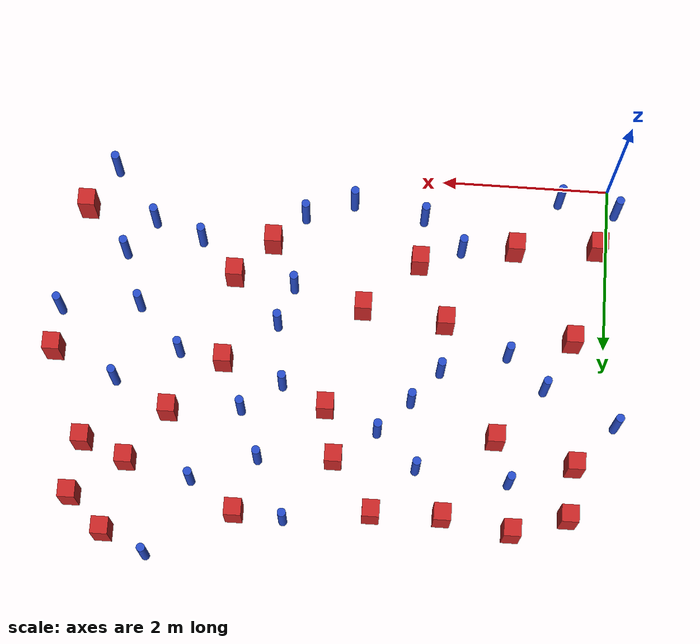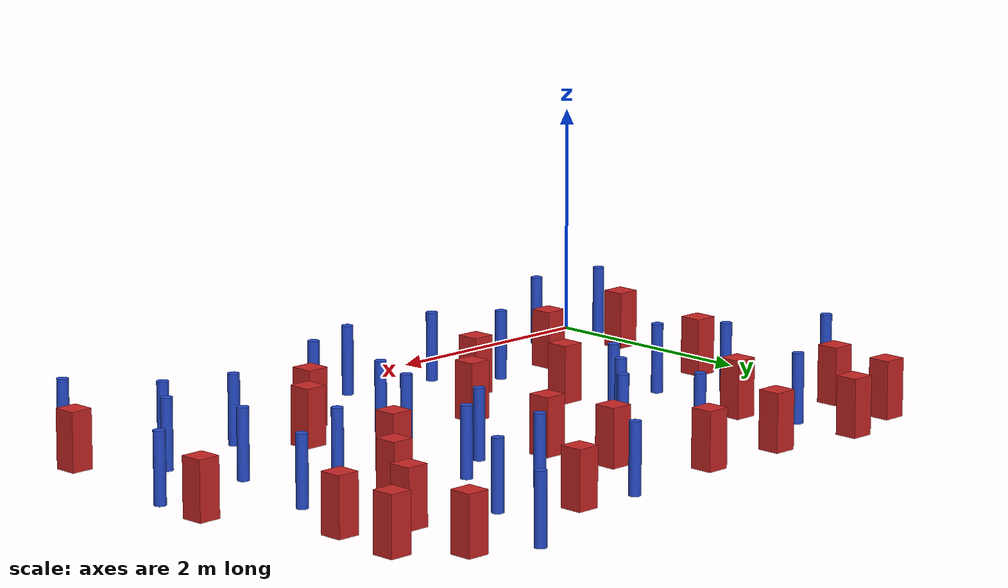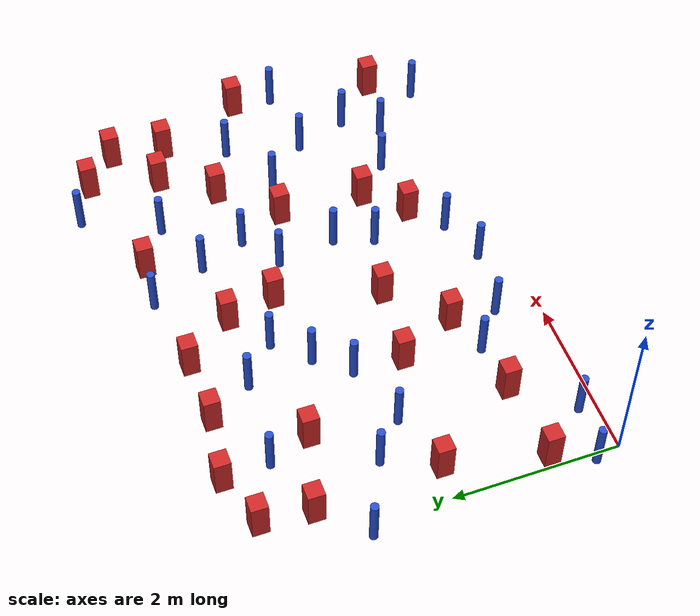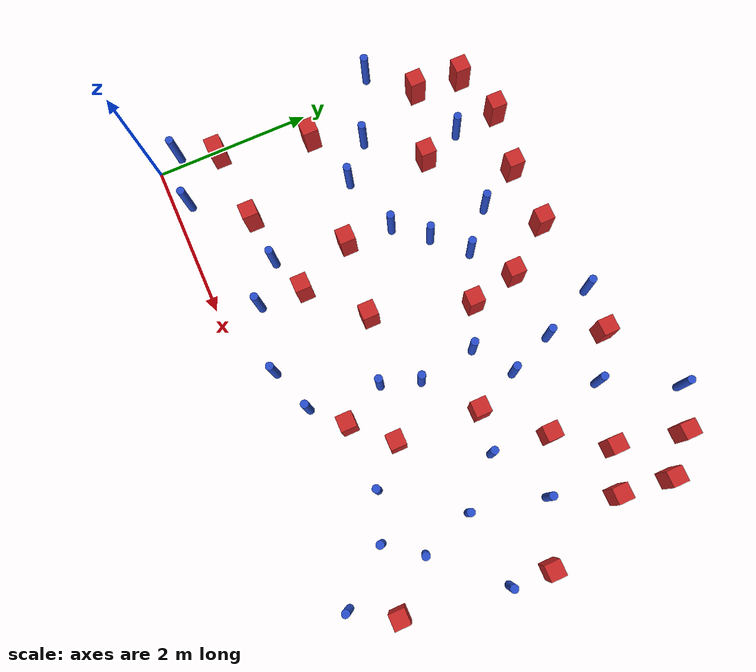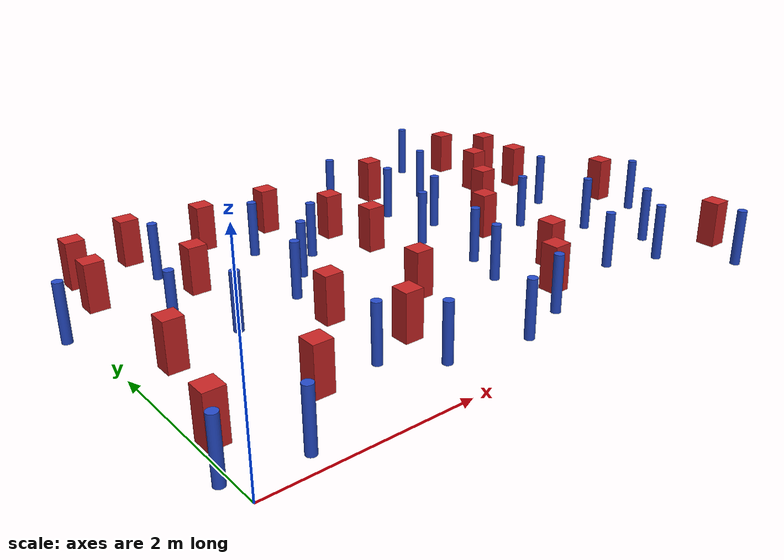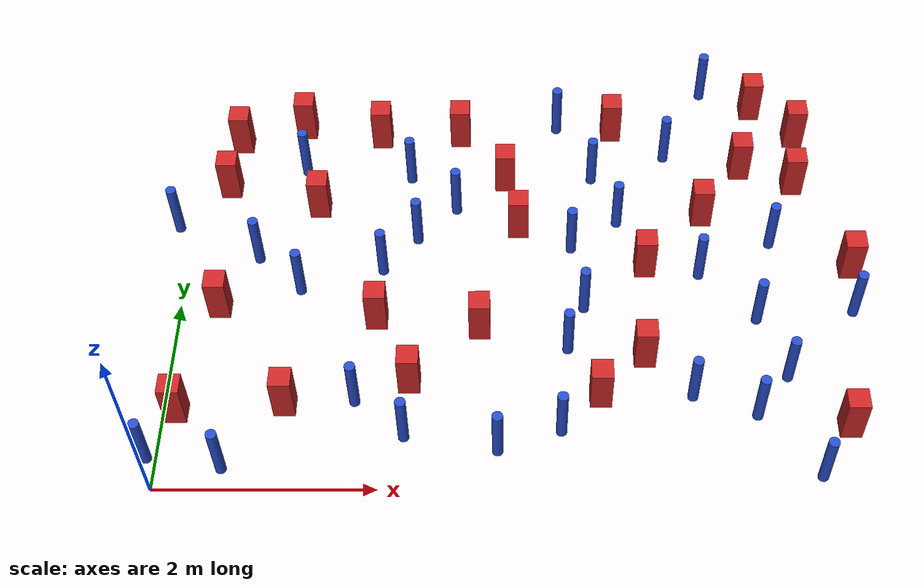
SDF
<sdf version="1.6">
 <model name="dense_15">
  <model name="square_post_obstacle7">
   <static>true</static>
   <pose>6.11921410497 4.16256446191 1.91545236811e-07 -7.35059704564e-06 1.12565212e-07 2.39332434364e-05</pose>
   <link name="link">
    <pose>0 0 0.25 0 -0 0</pose>
    <inertial>
     <mass>100</mass>
     <inertia>
      <ixx>0.166667</ixx>
      <ixy>0</ixy>
      <ixz>0</ixz>
      <iyy>0.166667</iyy>
      <iyz>0</iyz>
      <izz>0.166667</izz>
     </inertia>
    </inertial>
    <collision name="collision"><geometry><box><size>.2 .2 .5</size></box></geometry></collision>
    <visual name="visual">
     <geometry><box><size>.2 .2 .5</size></box></geometry>
     <material>
      <script><name>Gazebo/Red</name><uri>file://media/materials/scripts/gazebo.material</uri></script>
     </material>
    </visual>
   </link>
  </model>
  <model name="pole_obstacle13">
   <static>true</static>
   <pose>4.75254022368 3.89881679813 7.38925637345e-09 -8.47170692798e-08 1.24976764937e-08 -1.74513093023e-07</pose>
   <link name="link">
    <pose>0 0 0.3 0 -0 0</pose>
    <inertial>
     <mass>1</mass>
     <inertia><ixx>0.145833</ixx><ixy>0</ixy><ixz>0</ixz><iyy>0.145833</iyy><iyz>0</iyz><izz>0.125</izz></inertia>
    </inertial>
    <collision name="collision">
     <geometry><cylinder><radius>0.05</radius><length>.6</length></cylinder></geometry>
    </collision>
    <visual name="visual">
     <geometry><cylinder><radius>0.05</radius><length>.6</length></cylinder></geometry>
     <material>
      <script><name>Gazebo/Blue</name><uri>file://media/materials/scripts/gazebo.material</uri></script>
     </material>
    </visual>
   </link>
  </model>
  <model name="square_post_obstacle27">
   <static>true</static>
   <pose>3.9976284103 0.950378836151 1.91545236811e-07 -7.35059704564e-06 1.12565212e-07 2.39332434364e-05</pose>
   <link name="link">
    <pose>0 0 0.25 0 -0 0</pose>
    <inertial>
     <mass>100</mass>
     <inertia>
      <ixx>0.166667</ixx>
      <ixy>0</ixy>
      <ixz>0</ixz>
      <iyy>0.166667</iyy>
      <iyz>0</iyz>
      <izz>0.166667</izz>
     </inertia>
    </inertial>
    <collision name="collision"><geometry><box><size>.2 .2 .5</size></box></geometry></collision>
    <visual name="visual">
     <geometry><box><size>.2 .2 .5</size></box></geometry>
     <material>
      <script><name>Gazebo/Red</name><uri>file://media/materials/scripts/gazebo.material</uri></script>
     </material>
    </visual>
   </link>
  </model>
  <model name="pole_obstacle31">
   <static>true</static>
   <pose>0.698972050251 2.57138587034 7.38925637345e-09 -8.47170692799e-08 1.2497676509e-08 -1.74513093016e-07</pose>
   <link name="link">
    <pose>0 0 0.3 0 -0 0</pose>
    <inertial>
     <mass>1</mass>
     <inertia><ixx>0.145833</ixx><ixy>0</ixy><ixz>0</ixz><iyy>0.145833</iyy><iyz>0</iyz><izz>0.125</izz></inertia>
    </inertial>
    <collision name="collision">
     <geometry><cylinder><radius>0.05</radius><length>.6</length></cylinder></geometry>
    </collision>
    <visual name="visual">
     <geometry><cylinder><radius>0.05</radius><length>.6</length></cylinder></geometry>
     <material>
      <script><name>Gazebo/Blue</name><uri>file://media/materials/scripts/gazebo.material</uri></script>
     </material>
    </visual>
   </link>
  </model>
  <model name="square_post_obstacle35">
   <static>true</static>
   <pose>1.89690926793 1.83012325056 1.91545236811e-07 -7.35059704564e-06 1.12565212e-07 2.39332434364e-05</pose>
   <link name="link">
    <pose>0 0 0.25 0 -0 0</pose>
    <inertial>
     <mass>100</mass>
     <inertia>
      <ixx>0.166667</ixx>
      <ixy>0</ixy>
      <ixz>0</ixz>
      <iyy>0.166667</iyy>
      <iyz>0</iyz>
      <izz>0.166667</izz>
     </inertia>
    </inertial>
    <collision name="collision"><geometry><box><size>.2 .2 .5</size></box></geometry></collision>
    <visual name="visual">
     <geometry><box><size>.2 .2 .5</size></box></geometry>
     <material>
      <script><name>Gazebo/Red</name><uri>file://media/materials/scripts/gazebo.material</uri></script>
     </material>
    </visual>
   </link>
  </model>
  <model name="pole_obstacle35">
   <static>true</static>
   <pose>1.13954586894 2.18539703814 7.38925637345e-09 -8.47170692799e-08 1.24976765053e-08 -1.74513093017e-07</pose>
   <link name="link">
    <pose>0 0 0.3 0 -0 0</pose>
    <inertial>
     <mass>1</mass>
     <inertia><ixx>0.145833</ixx><ixy>0</ixy><ixz>0</ixz><iyy>0.145833</iyy><iyz>0</iyz><izz>0.125</izz></inertia>
    </inertial>
    <collision name="collision">
     <geometry><cylinder><radius>0.05</radius><length>.6</length></cylinder></geometry>
    </collision>
    <visual name="visual">
     <geometry><cylinder><radius>0.05</radius><length>.6</length></cylinder></geometry>
     <material>
      <script><name>Gazebo/Blue</name><uri>file://media/materials/scripts/gazebo.material</uri></script>
     </material>
    </visual>
   </link>
  </model>
  <model name="pole_obstacle36">
   <static>true</static>
   <pose>1.92514680043 2.42542104154 7.38925637345e-09 -8.47170692799e-08 1.24976765053e-08 -1.74513093017e-07</pose>
   <link name="link">
    <pose>0 0 0.3 0 -0 0</pose>
    <inertial>
     <mass>1</mass>
     <inertia><ixx>0.145833</ixx><ixy>0</ixy><ixz>0</ixz><iyy>0.145833</iyy><iyz>0</iyz><izz>0.125</izz></inertia>
    </inertial>
    <collision name="collision">
     <geometry><cylinder><radius>0.05</radius><length>.6</length></cylinder></geometry>
    </collision>
    <visual name="visual">
     <geometry><cylinder><radius>0.05</radius><length>.6</length></cylinder></geometry>
     <material>
      <script><name>Gazebo/Blue</name><uri>file://media/materials/scripts/gazebo.material</uri></script>
     </material>
    </visual>
   </link>
  </model>
  <model name="square_post_obstacle38">
   <static>true</static>
   <pose>5.51444573957 3.71277571455 1.91545236811e-07 -7.35059704564e-06 1.12565212e-07 2.39332434364e-05</pose>
   <link name="link">
    <pose>0 0 0.25 0 -0 0</pose>
    <inertial>
     <mass>100</mass>
     <inertia>
      <ixx>0.166667</ixx>
      <ixy>0</ixy>
      <ixz>0</ixz>
      <iyy>0.166667</iyy>
      <iyz>0</iyz>
      <izz>0.166667</izz>
     </inertia>
    </inertial>
    <collision name="collision"><geometry><box><size>.2 .2 .5</size></box></geometry></collision>
    <visual name="visual">
     <geometry><box><size>.2 .2 .5</size></box></geometry>
     <material>
      <script><name>Gazebo/Red</name><uri>file://media/materials/scripts/gazebo.material</uri></script>
     </material>
    </visual>
   </link>
  </model>
  <model name="pole_obstacle39">
   <static>true</static>
   <pose>3.63261479475 0.594411479498 7.38925637345e-09 -8.471706928e-08 1.24976765177e-08 -1.74513093012e-07</pose>
   <link name="link">
    <pose>0 0 0.3 0 -0 0</pose>
    <inertial>
     <mass>1</mass>
     <inertia><ixx>0.145833</ixx><ixy>0</ixy><ixz>0</ixz><iyy>0.145833</iyy><iyz>0</iyz><izz>0.125</izz></inertia>
    </inertial>
    <collision name="collision">
     <geometry><cylinder><radius>0.05</radius><length>.6</length></cylinder></geometry>
    </collision>
    <visual name="visual">
     <geometry><cylinder><radius>0.05</radius><length>.6</length></cylinder></geometry>
     <material>
      <script><name>Gazebo/Blue</name><uri>file://media/materials/scripts/gazebo.material</uri></script>
     </material>
    </visual>
   </link>
  </model>
  <model name="pole_obstacle40">
   <static>true</static>
   <pose>-0.140297477696 2.96369750289 7.38925637345e-09 -8.47170692792e-08 1.24976764377e-08 -1.74513093042e-07</pose>
   <link name="link">
    <pose>0 0 0.3 0 -0 0</pose>
    <inertial>
     <mass>1</mass>
     <inertia><ixx>0.145833</ixx><ixy>0</ixy><ixz>0</ixz><iyy>0.145833</iyy><iyz>0</iyz><izz>0.125</izz></inertia>
    </inertial>
    <collision name="collision">
     <geometry><cylinder><radius>0.05</radius><length>.6</length></cylinder></geometry>
    </collision>
    <visual name="visual">
     <geometry><cylinder><radius>0.05</radius><length>.6</length></cylinder></geometry>
     <material>
      <script><name>Gazebo/Blue</name><uri>file://media/materials/scripts/gazebo.material</uri></script>
     </material>
    </visual>
   </link>
  </model>
  <model name="pole_obstacle44">
   <static>true</static>
   <pose>2.15742503474 3.61236505607 7.38925637345e-09 -8.47170692798e-08 1.24976764939e-08 -1.74513093025e-07</pose>
   <link name="link">
    <pose>0 0 0.3 0 -0 0</pose>
    <inertial>
     <mass>1</mass>
     <inertia><ixx>0.145833</ixx><ixy>0</ixy><ixz>0</ixz><iyy>0.145833</iyy><iyz>0</iyz><izz>0.125</izz></inertia>
    </inertial>
    <collision name="collision">
     <geometry><cylinder><radius>0.05</radius><length>.6</length></cylinder></geometry>
    </collision>
    <visual name="visual">
     <geometry><cylinder><radius>0.05</radius><length>.6</length></cylinder></geometry>
     <material>
      <script><name>Gazebo/Blue</name><uri>file://media/materials/scripts/gazebo.material</uri></script>
     </material>
    </visual>
   </link>
  </model>
  <model name="pole_obstacle45">
   <static>true</static>
   <pose>5.94297906391 0.129956108175 7.38925637345e-09 -8.47170692801e-08 1.24976765186e-08 -1.74513093012e-07</pose>
   <link name="link">
    <pose>0 0 0.3 0 -0 0</pose>
    <inertial>
     <mass>1</mass>
     <inertia><ixx>0.145833</ixx><ixy>0</ixy><ixz>0</ixz><iyy>0.145833</iyy><iyz>0</iyz><izz>0.125</izz></inertia>
    </inertial>
    <collision name="collision">
     <geometry><cylinder><radius>0.05</radius><length>.6</length></cylinder></geometry>
    </collision>
    <visual name="visual">
     <geometry><cylinder><radius>0.05</radius><length>.6</length></cylinder></geometry>
     <material>
      <script><name>Gazebo/Blue</name><uri>file://media/materials/scripts/gazebo.material</uri></script>
     </material>
    </visual>
   </link>
  </model>
  <model name="square_post_obstacle45">
   <static>true</static>
   <pose>2.87869501788 1.71139791994 1.91545236811e-07 -7.35059704564e-06 1.12565212e-07 2.39332434364e-05</pose>
   <link name="link">
    <pose>0 0 0.25 0 -0 0</pose>
    <inertial>
     <mass>100</mass>
     <inertia>
      <ixx>0.166667</ixx>
      <ixy>0</ixy>
      <ixz>0</ixz>
      <iyy>0.166667</iyy>
      <iyz>0</iyz>
      <izz>0.166667</izz>
     </inertia>
    </inertial>
    <collision name="collision"><geometry><box><size>.2 .2 .5</size></box></geometry></collision>
    <visual name="visual">
     <geometry><box><size>.2 .2 .5</size></box></geometry>
     <material>
      <script><name>Gazebo/Red</name><uri>file://media/materials/scripts/gazebo.material</uri></script>
     </material>
    </visual>
   </link>
  </model>
  <model name="square_post_obstacle46">
   <static>true</static>
   <pose>0.388870257449 1.96171872005 1.91545236811e-07 -7.35059704564e-06 1.12565212e-07 2.39332434364e-05</pose>
   <link name="link">
    <pose>0 0 0.25 0 -0 0</pose>
    <inertial>
     <mass>100</mass>
     <inertia>
      <ixx>0.166667</ixx>
      <ixy>0</ixy>
      <ixz>0</ixz>
      <iyy>0.166667</iyy>
      <iyz>0</iyz>
      <izz>0.166667</izz>
     </inertia>
    </inertial>
    <collision name="collision"><geometry><box><size>.2 .2 .5</size></box></geometry></collision>
    <visual name="visual">
     <geometry><box><size>.2 .2 .5</size></box></geometry>
     <material>
      <script><name>Gazebo/Red</name><uri>file://media/materials/scripts/gazebo.material</uri></script>
     </material>
    </visual>
   </link>
  </model>
  <model name="pole_obstacle47">
   <static>true</static>
   <pose>5.00595628964 2.36893094893 7.38925637345e-09 -8.47170692798e-08 1.24976764937e-08 -1.74513093023e-07</pose>
   <link name="link">
    <pose>0 0 0.3 0 -0 0</pose>
    <inertial>
     <mass>1</mass>
     <inertia><ixx>0.145833</ixx><ixy>0</ixy><ixz>0</ixz><iyy>0.145833</iyy><iyz>0</iyz><izz>0.125</izz></inertia>
    </inertial>
    <collision name="collision">
     <geometry><cylinder><radius>0.05</radius><length>.6</length></cylinder></geometry>
    </collision>
    <visual name="visual">
     <geometry><cylinder><radius>0.05</radius><length>.6</length></cylinder></geometry>
     <material>
      <script><name>Gazebo/Blue</name><uri>file://media/materials/scripts/gazebo.material</uri></script>
     </material>
    </visual>
   </link>
  </model>
  <model name="square_post_obstacle52">
   <static>true</static>
   <pose>5.70429985319 4.55749865179 1.91545236811e-07 -7.35059704564e-06 1.12565212e-07 2.39332434364e-05</pose>
   <link name="link">
    <pose>0 0 0.25 0 -0 0</pose>
    <inertial>
     <mass>100</mass>
     <inertia>
      <ixx>0.166667</ixx>
      <ixy>0</ixy>
      <ixz>0</ixz>
      <iyy>0.166667</iyy>
      <iyz>0</iyz>
      <izz>0.166667</izz>
     </inertia>
    </inertial>
    <collision name="collision"><geometry><box><size>.2 .2 .5</size></box></geometry></collision>
    <visual name="visual">
     <geometry><box><size>.2 .2 .5</size></box></geometry>
     <material>
      <script><name>Gazebo/Red</name><uri>file://media/materials/scripts/gazebo.material</uri></script>
     </material>
    </visual>
   </link>
  </model>
  <model name="pole_obstacle53">
   <static>true</static>
   <pose>3.65114091582 4.30178377031 7.38925637345e-09 -8.47170692798e-08 1.24976765033e-08 -1.74513093019e-07</pose>
   <link name="link">
    <pose>0 0 0.3 0 -0 0</pose>
    <inertial>
     <mass>1</mass>
     <inertia><ixx>0.145833</ixx><ixy>0</ixy><ixz>0</ixz><iyy>0.145833</iyy><iyz>0</iyz><izz>0.125</izz></inertia>
    </inertial>
    <collision name="collision">
     <geometry><cylinder><radius>0.05</radius><length>.6</length></cylinder></geometry>
    </collision>
    <visual name="visual">
     <geometry><cylinder><radius>0.05</radius><length>.6</length></cylinder></geometry>
     <material>
      <script><name>Gazebo/Blue</name><uri>file://media/materials/scripts/gazebo.material</uri></script>
     </material>
    </visual>
   </link>
  </model>
  <model name="pole_obstacle54">
   <static>true</static>
   <pose>5.52081804444 1.83336792338 7.38925637345e-09 -8.471706928e-08 1.24976765134e-08 -1.74513093015e-07</pose>
   <link name="link">
    <pose>0 0 0.3 0 -0 0</pose>
    <inertial>
     <mass>1</mass>
     <inertia><ixx>0.145833</ixx><ixy>0</ixy><ixz>0</ixz><iyy>0.145833</iyy><iyz>0</iyz><izz>0.125</izz></inertia>
    </inertial>
    <collision name="collision">
     <geometry><cylinder><radius>0.05</radius><length>.6</length></cylinder></geometry>
    </collision>
    <visual name="visual">
     <geometry><cylinder><radius>0.05</radius><length>.6</length></cylinder></geometry>
     <material>
      <script><name>Gazebo/Blue</name><uri>file://media/materials/scripts/gazebo.material</uri></script>
     </material>
    </visual>
   </link>
  </model>
  <model name="square_post_obstacle60">
   <static>true</static>
   <pose>1.03155334816 4.28420791257 1.91545236811e-07 -7.35059704564e-06 1.12565212e-07 2.39332434364e-05</pose>
   <link name="link">
    <pose>0 0 0.25 0 -0 0</pose>
    <inertial>
     <mass>100</mass>
     <inertia>
      <ixx>0.166667</ixx>
      <ixy>0</ixy>
      <ixz>0</ixz>
      <iyy>0.166667</iyy>
      <iyz>0</iyz>
      <izz>0.166667</izz>
     </inertia>
    </inertial>
    <collision name="collision"><geometry><box><size>.2 .2 .5</size></box></geometry></collision>
    <visual name="visual">
     <geometry><box><size>.2 .2 .5</size></box></geometry>
     <material>
      <script><name>Gazebo/Red</name><uri>file://media/materials/scripts/gazebo.material</uri></script>
     </material>
    </visual>
   </link>
  </model>
  <model name="pole_obstacle56">
   <static>true</static>
   <pose>5.20020420543 4.79944856402 7.38925637345e-09 -8.47170692796e-08 1.24976764786e-08 -1.74513093032e-07</pose>
   <link name="link">
    <pose>0 0 0.3 0 -0 0</pose>
    <inertial>
     <mass>1</mass>
     <inertia><ixx>0.145833</ixx><ixy>0</ixy><ixz>0</ixz><iyy>0.145833</iyy><iyz>0</iyz><izz>0.125</izz></inertia>
    </inertial>
    <collision name="collision">
     <geometry><cylinder><radius>0.05</radius><length>.6</length></cylinder></geometry>
    </collision>
    <visual name="visual">
     <geometry><cylinder><radius>0.05</radius><length>.6</length></cylinder></geometry>
     <material>
      <script><name>Gazebo/Blue</name><uri>file://media/materials/scripts/gazebo.material</uri></script>
     </material>
    </visual>
   </link>
  </model>
  <model name="square_post_obstacle64">
   <static>true</static>
   <pose>0.127569910864 0.793708324014 1.91545236811e-07 -7.35059704564e-06 1.12565212e-07 2.39332434364e-05</pose>
   <link name="link">
    <pose>0 0 0.25 0 -0 0</pose>
    <inertial>
     <mass>100</mass>
     <inertia>
      <ixx>0.166667</ixx>
      <ixy>0</ixy>
      <ixz>0</ixz>
      <iyy>0.166667</iyy>
      <iyz>0</iyz>
      <izz>0.166667</izz>
     </inertia>
    </inertial>
    <collision name="collision"><geometry><box><size>.2 .2 .5</size></box></geometry></collision>
    <visual name="visual">
     <geometry><box><size>.2 .2 .5</size></box></geometry>
     <material>
      <script><name>Gazebo/Red</name><uri>file://media/materials/scripts/gazebo.material</uri></script>
     </material>
    </visual>
   </link>
  </model>
  <model name="square_post_obstacle74">
   <static>true</static>
   <pose>1.10912062064 0.864313531359 1.91545236811e-07 -7.35059704564e-06 1.12565212e-07 2.39332434364e-05</pose>
   <link name="link">
    <pose>0 0 0.25 0 -0 0</pose>
    <inertial>
     <mass>100</mass>
     <inertia>
      <ixx>0.166667</ixx>
      <ixy>0</ixy>
      <ixz>0</ixz>
      <iyy>0.166667</iyy>
      <iyz>0</iyz>
      <izz>0.166667</izz>
     </inertia>
    </inertial>
    <collision name="collision"><geometry><box><size>.2 .2 .5</size></box></geometry></collision>
    <visual name="visual">
     <geometry><box><size>.2 .2 .5</size></box></geometry>
     <material>
      <script><name>Gazebo/Red</name><uri>file://media/materials/scripts/gazebo.material</uri></script>
     </material>
    </visual>
   </link>
  </model>
  <model name="pole_obstacle82">
   <static>true</static>
   <pose>0.59641954777 0.210527559315 7.38925637345e-09 -8.471706928e-08 1.24976765073e-08 -1.74513093016e-07</pose>
   <link name="link">
    <pose>0 0 0.3 0 -0 0</pose>
    <inertial>
     <mass>1</mass>
     <inertia><ixx>0.145833</ixx><ixy>0</ixy><ixz>0</ixz><iyy>0.145833</iyy><iyz>0</iyz><izz>0.125</izz></inertia>
    </inertial>
    <collision name="collision">
     <geometry><cylinder><radius>0.05</radius><length>.6</length></cylinder></geometry>
    </collision>
    <visual name="visual">
     <geometry><cylinder><radius>0.05</radius><length>.6</length></cylinder></geometry>
     <material>
      <script><name>Gazebo/Blue</name><uri>file://media/materials/scripts/gazebo.material</uri></script>
     </material>
    </visual>
   </link>
  </model>
  <model name="square_post_obstacle80">
   <static>true</static>
   <pose>5.07583082805 3.09073552369 1.91545236811e-07 -7.35059704564e-06 1.12565212e-07 2.39332434364e-05</pose>
   <link name="link">
    <pose>0 0 0.25 0 -0 0</pose>
    <inertial>
     <mass>100</mass>
     <inertia>
      <ixx>0.166667</ixx>
      <ixy>0</ixy>
      <ixz>0</ixz>
      <iyy>0.166667</iyy>
      <iyz>0</iyz>
      <izz>0.166667</izz>
     </inertia>
    </inertial>
    <collision name="collision"><geometry><box><size>.2 .2 .5</size></box></geometry></collision>
    <visual name="visual">
     <geometry><box><size>.2 .2 .5</size></box></geometry>
     <material>
      <script><name>Gazebo/Red</name><uri>file://media/materials/scripts/gazebo.material</uri></script>
     </material>
    </visual>
   </link>
  </model>
  <model name="pole_obstacle90">
   <static>true</static>
   <pose>-0.0850136364126 0.316464807151 7.38925637345e-09 -8.47170692799e-08 1.24976765053e-08 -1.74513093017e-07</pose>
   <link name="link">
    <pose>0 0 0.3 0 -0 0</pose>
    <inertial>
     <mass>1</mass>
     <inertia><ixx>0.145833</ixx><ixy>0</ixy><ixz>0</ixz><iyy>0.145833</iyy><iyz>0</iyz><izz>0.125</izz></inertia>
    </inertial>
    <collision name="collision">
     <geometry><cylinder><radius>0.05</radius><length>.6</length></cylinder></geometry>
    </collision>
    <visual name="visual">
     <geometry><cylinder><radius>0.05</radius><length>.6</length></cylinder></geometry>
     <material>
      <script><name>Gazebo/Blue</name><uri>file://media/materials/scripts/gazebo.material</uri></script>
     </material>
    </visual>
   </link>
  </model>
  <model name="pole_obstacle96">
   <static>true</static>
   <pose>5.42826381468 0.76316016338 7.38925637345e-09 -8.47170692799e-08 1.24976765038e-08 -1.74513093018e-07</pose>
   <link name="link">
    <pose>0 0 0.3 0 -0 0</pose>
    <inertial>
     <mass>1</mass>
     <inertia><ixx>0.145833</ixx><ixy>0</ixy><ixz>0</ixz><iyy>0.145833</iyy><iyz>0</iyz><izz>0.125</izz></inertia>
    </inertial>
    <collision name="collision">
     <geometry><cylinder><radius>0.05</radius><length>.6</length></cylinder></geometry>
    </collision>
    <visual name="visual">
     <geometry><cylinder><radius>0.05</radius><length>.6</length></cylinder></geometry>
     <material>
      <script><name>Gazebo/Blue</name><uri>file://media/materials/scripts/gazebo.material</uri></script>
     </material>
    </visual>
   </link>
  </model>
  <model name="square_post_obstacle88">
   <static>true</static>
   <pose>4.21620489456 4.24878912598 1.91545236811e-07 -7.35059704564e-06 1.12565212e-07 2.39332434364e-05</pose>
   <link name="link">
    <pose>0 0 0.25 0 -0 0</pose>
    <inertial>
     <mass>100</mass>
     <inertia>
      <ixx>0.166667</ixx>
      <ixy>0</ixy>
      <ixz>0</ixz>
      <iyy>0.166667</iyy>
      <iyz>0</iyz>
      <izz>0.166667</izz>
     </inertia>
    </inertial>
    <collision name="collision"><geometry><box><size>.2 .2 .5</size></box></geometry></collision>
    <visual name="visual">
     <geometry><box><size>.2 .2 .5</size></box></geometry>
     <material>
      <script><name>Gazebo/Red</name><uri>file://media/materials/scripts/gazebo.material</uri></script>
     </material>
    </visual>
   </link>
  </model>
  <model name="square_post_obstacle91">
   <static>true</static>
   <pose>3.11571933212 3.55489792918 1.91545236811e-07 -7.35059704564e-06 1.12565212e-07 2.39332434364e-05</pose>
   <link name="link">
    <pose>0 0 0.25 0 -0 0</pose>
    <inertial>
     <mass>100</mass>
     <inertia>
      <ixx>0.166667</ixx>
      <ixy>0</ixy>
      <ixz>0</ixz>
      <iyy>0.166667</iyy>
      <iyz>0</iyz>
      <izz>0.166667</izz>
     </inertia>
    </inertial>
    <collision name="collision"><geometry><box><size>.2 .2 .5</size></box></geometry></collision>
    <visual name="visual">
     <geometry><box><size>.2 .2 .5</size></box></geometry>
     <material>
      <script><name>Gazebo/Red</name><uri>file://media/materials/scripts/gazebo.material</uri></script>
     </material>
    </visual>
   </link>
  </model>
  <model name="pole_obstacle105">
   <static>true</static>
   <pose>3.87378546488 1.96796487815 7.38925637345e-09 -8.47170692799e-08 1.24976764986e-08 -1.74513093023e-07</pose>
   <link name="link">
    <pose>0 0 0.3 0 -0 0</pose>
    <inertial>
     <mass>1</mass>
     <inertia><ixx>0.145833</ixx><ixy>0</ixy><ixz>0</ixz><iyy>0.145833</iyy><iyz>0</iyz><izz>0.125</izz></inertia>
    </inertial>
    <collision name="collision">
     <geometry><cylinder><radius>0.05</radius><length>.6</length></cylinder></geometry>
    </collision>
    <visual name="visual">
     <geometry><cylinder><radius>0.05</radius><length>.6</length></cylinder></geometry>
     <material>
      <script><name>Gazebo/Blue</name><uri>file://media/materials/scripts/gazebo.material</uri></script>
     </material>
    </visual>
   </link>
  </model>
  <model name="pole_obstacle107">
   <static>true</static>
   <pose>3.76734034066 2.6973369474 7.38925637345e-09 -8.47170692798e-08 1.24976764939e-08 -1.74513093025e-07</pose>
   <link name="link">
    <pose>0 0 0.3 0 -0 0</pose>
    <inertial>
     <mass>1</mass>
     <inertia><ixx>0.145833</ixx><ixy>0</ixy><ixz>0</ixz><iyy>0.145833</iyy><iyz>0</iyz><izz>0.125</izz></inertia>
    </inertial>
    <collision name="collision">
     <geometry><cylinder><radius>0.05</radius><length>.6</length></cylinder></geometry>
    </collision>
    <visual name="visual">
     <geometry><cylinder><radius>0.05</radius><length>.6</length></cylinder></geometry>
     <material>
      <script><name>Gazebo/Blue</name><uri>file://media/materials/scripts/gazebo.material</uri></script>
     </material>
    </visual>
   </link>
  </model>
  <model name="pole_obstacle109">
   <static>true</static>
   <pose>3.05712422276 0.391317383034 7.38925637345e-09 -8.471706928e-08 1.24976765172e-08 -1.74513093013e-07</pose>
   <link name="link">
    <pose>0 0 0.3 0 -0 0</pose>
    <inertial>
     <mass>1</mass>
     <inertia><ixx>0.145833</ixx><ixy>0</ixy><ixz>0</ixz><iyy>0.145833</iyy><iyz>0</iyz><izz>0.125</izz></inertia>
    </inertial>
    <collision name="collision">
     <geometry><cylinder><radius>0.05</radius><length>.6</length></cylinder></geometry>
    </collision>
    <visual name="visual">
     <geometry><cylinder><radius>0.05</radius><length>.6</length></cylinder></geometry>
     <material>
      <script><name>Gazebo/Blue</name><uri>file://media/materials/scripts/gazebo.material</uri></script>
     </material>
    </visual>
   </link>
  </model>
  <model name="square_post_obstacle98">
   <static>true</static>
   <pose>2.2363825276 1.10390865737 1.91545236811e-07 -7.35059704564e-06 1.12565212e-07 2.39332434364e-05</pose>
   <link name="link">
    <pose>0 0 0.25 0 -0 0</pose>
    <inertial>
     <mass>100</mass>
     <inertia>
      <ixx>0.166667</ixx>
      <ixy>0</ixy>
      <ixz>0</ixz>
      <iyy>0.166667</iyy>
      <iyz>0</iyz>
      <izz>0.166667</izz>
     </inertia>
    </inertial>
    <collision name="collision"><geometry><box><size>.2 .2 .5</size></box></geometry></collision>
    <visual name="visual">
     <geometry><box><size>.2 .2 .5</size></box></geometry>
     <material>
      <script><name>Gazebo/Red</name><uri>file://media/materials/scripts/gazebo.material</uri></script>
     </material>
    </visual>
   </link>
  </model>
  <model name="square_post_obstacle109">
   <static>true</static>
   <pose>1.25293970613 3.20373089903 1.91545236811e-07 -7.35059704564e-06 1.12565212e-07 2.39332434364e-05</pose>
   <link name="link">
    <pose>0 0 0.25 0 -0 0</pose>
    <inertial>
     <mass>100</mass>
     <inertia>
      <ixx>0.166667</ixx>
      <ixy>0</ixy>
      <ixz>0</ixz>
      <iyy>0.166667</iyy>
      <iyz>0</iyz>
      <izz>0.166667</izz>
     </inertia>
    </inertial>
    <collision name="collision"><geometry><box><size>.2 .2 .5</size></box></geometry></collision>
    <visual name="visual">
     <geometry><box><size>.2 .2 .5</size></box></geometry>
     <material>
      <script><name>Gazebo/Red</name><uri>file://media/materials/scripts/gazebo.material</uri></script>
     </material>
    </visual>
   </link>
  </model>
  <model name="pole_obstacle139">
   <static>true</static>
   <pose>2.25131700589 2.81456950409 7.38925637345e-09 -8.47170692798e-08 1.24976764939e-08 -1.74513093025e-07</pose>
   <link name="link">
    <pose>0 0 0.3 0 -0 0</pose>
    <inertial>
     <mass>1</mass>
     <inertia><ixx>0.145833</ixx><ixy>0</ixy><ixz>0</ixz><iyy>0.145833</iyy><iyz>0</iyz><izz>0.125</izz></inertia>
    </inertial>
    <collision name="collision">
     <geometry><cylinder><radius>0.05</radius><length>.6</length></cylinder></geometry>
    </collision>
    <visual name="visual">
     <geometry><cylinder><radius>0.05</radius><length>.6</length></cylinder></geometry>
     <material>
      <script><name>Gazebo/Blue</name><uri>file://media/materials/scripts/gazebo.material</uri></script>
     </material>
    </visual>
   </link>
  </model>
  <model name="square_post_obstacle126">
   <static>true</static>
   <pose>6.48133287327 2.43271555359 1.91545236811e-07 -7.35059704564e-06 1.12565212e-07 2.39332434364e-05</pose>
   <link name="link">
    <pose>0 0 0.25 0 -0 0</pose>
    <inertial>
     <mass>100</mass>
     <inertia>
      <ixx>0.166667</ixx>
      <ixy>0</ixy>
      <ixz>0</ixz>
      <iyy>0.166667</iyy>
      <iyz>0</iyz>
      <izz>0.166667</izz>
     </inertia>
    </inertial>
    <collision name="collision"><geometry><box><size>.2 .2 .5</size></box></geometry></collision>
    <visual name="visual">
     <geometry><box><size>.2 .2 .5</size></box></geometry>
     <material>
      <script><name>Gazebo/Red</name><uri>file://media/materials/scripts/gazebo.material</uri></script>
     </material>
    </visual>
   </link>
  </model>
  <model name="pole_obstacle155">
   <static>true</static>
   <pose>3.99479648377 3.60211802251 7.38925637345e-09 -8.47170692796e-08 1.24976764765e-08 -1.74513093035e-07</pose>
   <link name="link">
    <pose>0 0 0.3 0 -0 0</pose>
    <inertial>
     <mass>1</mass>
     <inertia><ixx>0.145833</ixx><ixy>0</ixy><ixz>0</ixz><iyy>0.145833</iyy><iyz>0</iyz><izz>0.125</izz></inertia>
    </inertial>
    <collision name="collision">
     <geometry><cylinder><radius>0.05</radius><length>.6</length></cylinder></geometry>
    </collision>
    <visual name="visual">
     <geometry><cylinder><radius>0.05</radius><length>.6</length></cylinder></geometry>
     <material>
      <script><name>Gazebo/Blue</name><uri>file://media/materials/scripts/gazebo.material</uri></script>
     </material>
    </visual>
   </link>
  </model>
  <model name="square_post_obstacle147">
   <static>true</static>
   <pose>0.326971583128 3.46836973683 1.91545236811e-07 -7.35059704564e-06 1.12565212e-07 2.39332434364e-05</pose>
   <link name="link">
    <pose>0 0 0.25 0 -0 0</pose>
    <inertial>
     <mass>100</mass>
     <inertia>
      <ixx>0.166667</ixx>
      <ixy>0</ixy>
      <ixz>0</ixz>
      <iyy>0.166667</iyy>
      <iyz>0</iyz>
      <izz>0.166667</izz>
     </inertia>
    </inertial>
    <collision name="collision"><geometry><box><size>.2 .2 .5</size></box></geometry></collision>
    <visual name="visual">
     <geometry><box><size>.2 .2 .5</size></box></geometry>
     <material>
      <script><name>Gazebo/Red</name><uri>file://media/materials/scripts/gazebo.material</uri></script>
     </material>
    </visual>
   </link>
  </model>
  <model name="square_post_obstacle148">
   <static>true</static>
   <pose>1.83271213947 4.15237861725 1.91545236811e-07 -7.35059704564e-06 1.12565212e-07 2.39332434364e-05</pose>
   <link name="link">
    <pose>0 0 0.25 0 -0 0</pose>
    <inertial>
     <mass>100</mass>
     <inertia>
      <ixx>0.166667</ixx>
      <ixy>0</ixy>
      <ixz>0</ixz>
      <iyy>0.166667</iyy>
      <iyz>0</iyz>
      <izz>0.166667</izz>
     </inertia>
    </inertial>
    <collision name="collision"><geometry><box><size>.2 .2 .5</size></box></geometry></collision>
    <visual name="visual">
     <geometry><box><size>.2 .2 .5</size></box></geometry>
     <material>
      <script><name>Gazebo/Red</name><uri>file://media/materials/scripts/gazebo.material</uri></script>
     </material>
    </visual>
   </link>
  </model>
  <model name="pole_obstacle157">
   <static>true</static>
   <pose>1.07508678061 3.71381754329 7.38925637345e-09 -8.47170692799e-08 1.24976765053e-08 -1.74513093017e-07</pose>
   <link name="link">
    <pose>0 0 0.3 0 -0 0</pose>
    <inertial>
     <mass>1</mass>
     <inertia><ixx>0.145833</ixx><ixy>0</ixy><ixz>0</ixz><iyy>0.145833</iyy><iyz>0</iyz><izz>0.125</izz></inertia>
    </inertial>
    <collision name="collision">
     <geometry><cylinder><radius>0.05</radius><length>.6</length></cylinder></geometry>
    </collision>
    <visual name="visual">
     <geometry><cylinder><radius>0.05</radius><length>.6</length></cylinder></geometry>
     <material>
      <script><name>Gazebo/Blue</name><uri>file://media/materials/scripts/gazebo.material</uri></script>
     </material>
    </visual>
   </link>
  </model>
  <model name="pole_obstacle158">
   <static>true</static>
   <pose>3.71012371541 1.49089795242 7.38925637345e-09 -8.471706928e-08 1.24976765152e-08 -1.74513093012e-07</pose>
   <link name="link">
    <pose>0 0 0.3 0 -0 0</pose>
    <inertial>
     <mass>1</mass>
     <inertia><ixx>0.145833</ixx><ixy>0</ixy><ixz>0</ixz><iyy>0.145833</iyy><iyz>0</iyz><izz>0.125</izz></inertia>
    </inertial>
    <collision name="collision">
     <geometry><cylinder><radius>0.05</radius><length>.6</length></cylinder></geometry>
    </collision>
    <visual name="visual">
     <geometry><cylinder><radius>0.05</radius><length>.6</length></cylinder></geometry>
     <material>
      <script><name>Gazebo/Blue</name><uri>file://media/materials/scripts/gazebo.material</uri></script>
     </material>
    </visual>
   </link>
  </model>
  <model name="pole_obstacle164">
   <static>true</static>
   <pose>5.74631214114 1.17899582524 7.38925637345e-09 -8.471706928e-08 1.24976765134e-08 -1.74513093015e-07</pose>
   <link name="link">
    <pose>0 0 0.3 0 -0 0</pose>
    <inertial>
     <mass>1</mass>
     <inertia><ixx>0.145833</ixx><ixy>0</ixy><ixz>0</ixz><iyy>0.145833</iyy><iyz>0</iyz><izz>0.125</izz></inertia>
    </inertial>
    <collision name="collision">
     <geometry><cylinder><radius>0.05</radius><length>.6</length></cylinder></geometry>
    </collision>
    <visual name="visual">
     <geometry><cylinder><radius>0.05</radius><length>.6</length></cylinder></geometry>
     <material>
      <script><name>Gazebo/Blue</name><uri>file://media/materials/scripts/gazebo.material</uri></script>
     </material>
    </visual>
   </link>
  </model>
  <model name="square_post_obstacle161">
   <static>true</static>
   <pose>2.64797752137 4.1649786972 1.91545236811e-07 -7.35059704564e-06 1.12565212e-07 2.39332434364e-05</pose>
   <link name="link">
    <pose>0 0 0.25 0 -0 0</pose>
    <inertial>
     <mass>100</mass>
     <inertia>
      <ixx>0.166667</ixx>
      <ixy>0</ixy>
      <ixz>0</ixz>
      <iyy>0.166667</iyy>
      <iyz>0</iyz>
      <izz>0.166667</izz>
     </inertia>
    </inertial>
    <collision name="collision"><geometry><box><size>.2 .2 .5</size></box></geometry></collision>
    <visual name="visual">
     <geometry><box><size>.2 .2 .5</size></box></geometry>
     <material>
      <script><name>Gazebo/Red</name><uri>file://media/materials/scripts/gazebo.material</uri></script>
     </material>
    </visual>
   </link>
  </model>
  <model name="pole_obstacle176">
   <static>true</static>
   <pose>4.84932029015 0.967150271005 7.38925637345e-09 -8.471706928e-08 1.24976765166e-08 -1.74513093011e-07</pose>
   <link name="link">
    <pose>0 0 0.3 0 -0 0</pose>
    <inertial>
     <mass>1</mass>
     <inertia><ixx>0.145833</ixx><ixy>0</ixy><ixz>0</ixz><iyy>0.145833</iyy><iyz>0</iyz><izz>0.125</izz></inertia>
    </inertial>
    <collision name="collision">
     <geometry><cylinder><radius>0.05</radius><length>.6</length></cylinder></geometry>
    </collision>
    <visual name="visual">
     <geometry><cylinder><radius>0.05</radius><length>.6</length></cylinder></geometry>
     <material>
      <script><name>Gazebo/Blue</name><uri>file://media/materials/scripts/gazebo.material</uri></script>
     </material>
    </visual>
   </link>
  </model>
  <model name="pole_obstacle183">
   <static>true</static>
   <pose>5.73505445391 2.75520296593 7.38925637345e-09 -8.47170692798e-08 1.24976764937e-08 -1.74513093023e-07</pose>
   <link name="link">
    <pose>0 0 0.3 0 -0 0</pose>
    <inertial>
     <mass>1</mass>
     <inertia><ixx>0.145833</ixx><ixy>0</ixy><ixz>0</ixz><iyy>0.145833</iyy><iyz>0</iyz><izz>0.125</izz></inertia>
    </inertial>
    <collision name="collision">
     <geometry><cylinder><radius>0.05</radius><length>.6</length></cylinder></geometry>
    </collision>
    <visual name="visual">
     <geometry><cylinder><radius>0.05</radius><length>.6</length></cylinder></geometry>
     <material>
      <script><name>Gazebo/Blue</name><uri>file://media/materials/scripts/gazebo.material</uri></script>
     </material>
    </visual>
   </link>
  </model>
  <model name="pole_obstacle184">
   <static>true</static>
   <pose>2.62605119965 3.1975418865 7.38925637345e-09 -8.47170692798e-08 1.24976764939e-08 -1.74513093025e-07</pose>
   <link name="link">
    <pose>0 0 0.3 0 -0 0</pose>
    <inertial>
     <mass>1</mass>
     <inertia><ixx>0.145833</ixx><ixy>0</ixy><ixz>0</ixz><iyy>0.145833</iyy><iyz>0</iyz><izz>0.125</izz></inertia>
    </inertial>
    <collision name="collision">
     <geometry><cylinder><radius>0.05</radius><length>.6</length></cylinder></geometry>
    </collision>
    <visual name="visual">
     <geometry><cylinder><radius>0.05</radius><length>.6</length></cylinder></geometry>
     <material>
      <script><name>Gazebo/Blue</name><uri>file://media/materials/scripts/gazebo.material</uri></script>
     </material>
    </visual>
   </link>
  </model>
  <model name="square_post_obstacle175">
   <static>true</static>
   <pose>6.24695338278 0.636101388864 1.91545236811e-07 -7.35059704564e-06 1.12565212e-07 2.39332434364e-05</pose>
   <link name="link">
    <pose>0 0 0.25 0 -0 0</pose>
    <inertial>
     <mass>100</mass>
     <inertia>
      <ixx>0.166667</ixx>
      <ixy>0</ixy>
      <ixz>0</ixz>
      <iyy>0.166667</iyy>
      <iyz>0</iyz>
      <izz>0.166667</izz>
     </inertia>
    </inertial>
    <collision name="collision"><geometry><box><size>.2 .2 .5</size></box></geometry></collision>
    <visual name="visual">
     <geometry><box><size>.2 .2 .5</size></box></geometry>
     <material>
      <script><name>Gazebo/Red</name><uri>file://media/materials/scripts/gazebo.material</uri></script>
     </material>
    </visual>
   </link>
  </model>
  <model name="square_post_obstacle178">
   <static>true</static>
   <pose>4.42445138412 1.39243161162 1.91545236811e-07 -7.35059704564e-06 1.12565212e-07 2.39332434364e-05</pose>
   <link name="link">
    <pose>0 0 0.25 0 -0 0</pose>
    <inertial>
     <mass>100</mass>
     <inertia>
      <ixx>0.166667</ixx>
      <ixy>0</ixy>
      <ixz>0</ixz>
      <iyy>0.166667</iyy>
      <iyz>0</iyz>
      <izz>0.166667</izz>
     </inertia>
    </inertial>
    <collision name="collision"><geometry><box><size>.2 .2 .5</size></box></geometry></collision>
    <visual name="visual">
     <geometry><box><size>.2 .2 .5</size></box></geometry>
     <material>
      <script><name>Gazebo/Red</name><uri>file://media/materials/scripts/gazebo.material</uri></script>
     </material>
    </visual>
   </link>
  </model>
  <model name="pole_obstacle194">
   <static>true</static>
   <pose>2.20564663074 0.536250077939 7.38925637345e-09 -8.471706928e-08 1.24976765147e-08 -1.74513093014e-07</pose>
   <link name="link">
    <pose>0 0 0.3 0 -0 0</pose>
    <inertial>
     <mass>1</mass>
     <inertia><ixx>0.145833</ixx><ixy>0</ixy><ixz>0</ixz><iyy>0.145833</iyy><iyz>0</iyz><izz>0.125</izz></inertia>
    </inertial>
    <collision name="collision">
     <geometry><cylinder><radius>0.05</radius><length>.6</length></cylinder></geometry>
    </collision>
    <visual name="visual">
     <geometry><cylinder><radius>0.05</radius><length>.6</length></cylinder></geometry>
     <material>
      <script><name>Gazebo/Blue</name><uri>file://media/materials/scripts/gazebo.material</uri></script>
     </material>
    </visual>
   </link>
  </model>
  <model name="square_post_obstacle190">
   <static>true</static>
   <pose>0.383070214306 4.07924368514 1.91545236811e-07 -7.35059704564e-06 1.12565212e-07 2.39332434364e-05</pose>
   <link name="link">
    <pose>0 0 0.25 0 -0 0</pose>
    <inertial>
     <mass>100</mass>
     <inertia>
      <ixx>0.166667</ixx>
      <ixy>0</ixy>
      <ixz>0</ixz>
      <iyy>0.166667</iyy>
      <iyz>0</iyz>
      <izz>0.166667</izz>
     </inertia>
    </inertial>
    <collision name="collision"><geometry><box><size>.2 .2 .5</size></box></geometry></collision>
    <visual name="visual">
     <geometry><box><size>.2 .2 .5</size></box></geometry>
     <material>
      <script><name>Gazebo/Red</name><uri>file://media/materials/scripts/gazebo.material</uri></script>
     </material>
    </visual>
   </link>
  </model>
  <model name="pole_obstacle206">
   <static>true</static>
   <pose>1.74055893074 0.910203882873 7.38925637345e-09 -8.47170692799e-08 1.24976765075e-08 -1.74513093017e-07</pose>
   <link name="link">
    <pose>0 0 0.3 0 -0 0</pose>
    <inertial>
     <mass>1</mass>
     <inertia><ixx>0.145833</ixx><ixy>0</ixy><ixz>0</ixz><iyy>0.145833</iyy><iyz>0</iyz><izz>0.125</izz></inertia>
    </inertial>
    <collision name="collision">
     <geometry><cylinder><radius>0.05</radius><length>.6</length></cylinder></geometry>
    </collision>
    <visual name="visual">
     <geometry><cylinder><radius>0.05</radius><length>.6</length></cylinder></geometry>
     <material>
      <script><name>Gazebo/Blue</name><uri>file://media/materials/scripts/gazebo.material</uri></script>
     </material>
    </visual>
   </link>
  </model>
  <model name="pole_obstacle209">
   <static>true</static>
   <pose>4.23056079083 3.02612691199 7.38925637345e-09 -8.47170692798e-08 1.24976764937e-08 -1.74513093023e-07</pose>
   <link name="link">
    <pose>0 0 0.3 0 -0 0</pose>
    <inertial>
     <mass>1</mass>
     <inertia><ixx>0.145833</ixx><ixy>0</ixy><ixz>0</ixz><iyy>0.145833</iyy><iyz>0</iyz><izz>0.125</izz></inertia>
    </inertial>
    <collision name="collision">
     <geometry><cylinder><radius>0.05</radius><length>.6</length></cylinder></geometry>
    </collision>
    <visual name="visual">
     <geometry><cylinder><radius>0.05</radius><length>.6</length></cylinder></geometry>
     <material>
      <script><name>Gazebo/Blue</name><uri>file://media/materials/scripts/gazebo.material</uri></script>
     </material>
    </visual>
   </link>
  </model>
  <model name="square_post_obstacle213">
   <static>true</static>
   <pose>4.48013512129 2.45299588831 1.91545236811e-07 -7.35059704564e-06 1.12565212e-07 2.39332434364e-05</pose>
   <link name="link">
    <pose>0 0 0.25 0 -0 0</pose>
    <inertial>
     <mass>100</mass>
     <inertia>
      <ixx>0.166667</ixx>
      <ixy>0</ixy>
      <ixz>0</ixz>
      <iyy>0.166667</iyy>
      <iyz>0</iyz>
      <izz>0.166667</izz>
     </inertia>
    </inertial>
    <collision name="collision"><geometry><box><size>.2 .2 .5</size></box></geometry></collision>
    <visual name="visual">
     <geometry><box><size>.2 .2 .5</size></box></geometry>
     <material>
      <script><name>Gazebo/Red</name><uri>file://media/materials/scripts/gazebo.material</uri></script>
     </material>
    </visual>
   </link>
  </model>
  <model name="square_post_obstacle216">
   <static>true</static>
   <pose>6.03698007213 3.50699843909 1.91545236811e-07 -7.35059704564e-06 1.12565212e-07 2.39332434364e-05</pose>
   <link name="link">
    <pose>0 0 0.25 0 -0 0</pose>
    <inertial>
     <mass>100</mass>
     <inertia>
      <ixx>0.166667</ixx>
      <ixy>0</ixy>
      <ixz>0</ixz>
      <iyy>0.166667</iyy>
      <iyz>0</iyz>
      <izz>0.166667</izz>
     </inertia>
    </inertial>
    <collision name="collision"><geometry><box><size>.2 .2 .5</size></box></geometry></collision>
    <visual name="visual">
     <geometry><box><size>.2 .2 .5</size></box></geometry>
     <material>
      <script><name>Gazebo/Red</name><uri>file://media/materials/scripts/gazebo.material</uri></script>
     </material>
    </visual>
   </link>
  </model>
  <model name="square_post_obstacle217">
   <static>true</static>
   <pose>3.24662598388 2.94776564826 1.91545236811e-07 -7.35059704564e-06 1.12565212e-07 2.39332434364e-05</pose>
   <link name="link">
    <pose>0 0 0.25 0 -0 0</pose>
    <inertial>
     <mass>100</mass>
     <inertia>
      <ixx>0.166667</ixx>
      <ixy>0</ixy>
      <ixz>0</ixz>
      <iyy>0.166667</iyy>
      <iyz>0</iyz>
      <izz>0.166667</izz>
     </inertia>
    </inertial>
    <collision name="collision"><geometry><box><size>.2 .2 .5</size></box></geometry></collision>
    <visual name="visual">
     <geometry><box><size>.2 .2 .5</size></box></geometry>
     <material>
      <script><name>Gazebo/Red</name><uri>file://media/materials/scripts/gazebo.material</uri></script>
     </material>
    </visual>
   </link>
  </model>
  <model name="pole_obstacle218">
   <static>true</static>
   <pose>6.45753000957 1.92299002078 7.38925637345e-09 -8.471706928e-08 1.24976765134e-08 -1.74513093015e-07</pose>
   <link name="link">
    <pose>0 0 0.3 0 -0 0</pose>
    <inertial>
     <mass>1</mass>
     <inertia><ixx>0.145833</ixx><ixy>0</ixy><ixz>0</ixz><iyy>0.145833</iyy><iyz>0</iyz><izz>0.125</izz></inertia>
    </inertial>
    <collision name="collision">
     <geometry><cylinder><radius>0.05</radius><length>.6</length></cylinder></geometry>
    </collision>
    <visual name="visual">
     <geometry><cylinder><radius>0.05</radius><length>.6</length></cylinder></geometry>
     <material>
      <script><name>Gazebo/Blue</name><uri>file://media/materials/scripts/gazebo.material</uri></script>
     </material>
    </visual>
   </link>
  </model>
 </model>
</sdf>
